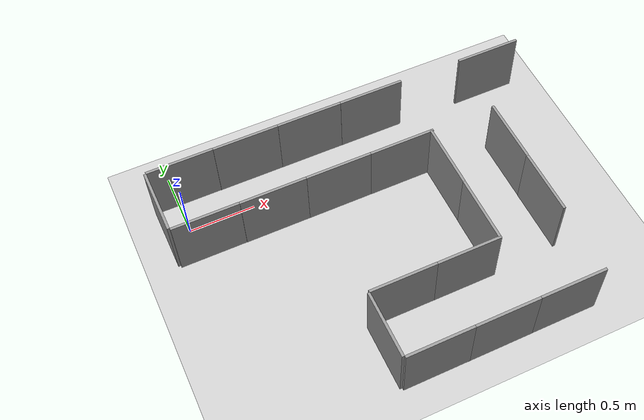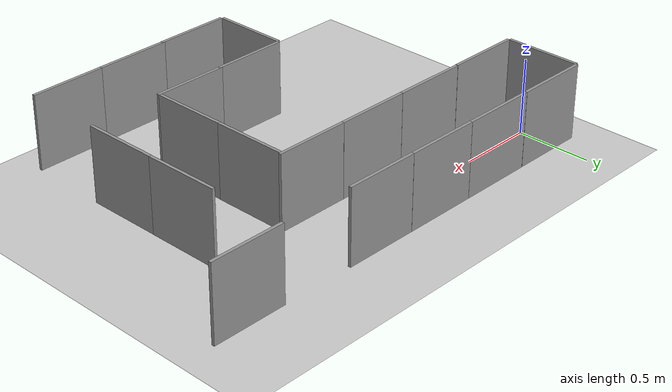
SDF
<sdf version="1.7">
 <world name="default">
  <model name="ground_plane">
   <static>1</static>
   <link name="link">
    <collision name="collision">
     <geometry><plane><normal>0 0 1</normal><size>100 100</size></plane></geometry>
     <surface><friction><ode><mu>100</mu><mu2>50</mu2></ode></friction></surface>
    </collision>
    <visual name="visual">
     <cast_shadows>0</cast_shadows>
     <geometry><plane><normal>0 0 1</normal><size>100 100</size></plane></geometry>
     <material>
      <script><uri>file://media/materials/scripts/gazebo.material</uri><name>Gazebo/Grey</name></script>
     </material>
    </visual>
   </link>
  </model>
  <model name="hsl_module_1">
   <link name="link_2_clone">
    <inertial>
     <mass>1</mass>
     <inertia><ixx>0.01</ixx><ixy>0</ixy><ixz>0</ixz><iyy>0.02</iyy><iyz>0</iyz><izz>0.01</izz></inertia>
    </inertial>
    <pose>0.088798 -0.257146 0 0 -0 0</pose>
    <visual name="visual">
     <geometry><box><size>0.5 0.02 0.5</size></box></geometry>
     <material>
      <lighting>1</lighting>
      <script><uri>file://media/materials/scripts/gazebo.material</uri><name>Gazebo/Grey</name></script>
      <shader type="pixel"><normal_map>__default__</normal_map></shader>
      <ambient>0.3 0.3 0.3 1</ambient>
      <diffuse>0.7 0.7 0.7 1</diffuse>
      <specular>0.01 0.01 0.01 1</specular>
      <emissive>0 0 0 1</emissive>
     </material>
    </visual>
    <collision name="collision">
     <geometry><box><size>0.5 0.02 0.5</size></box></geometry>
     <surface>
      <friction>
       <ode><mu>1</mu><mu2>1</mu2><fdir1>0 0 0</fdir1><slip1>0</slip1><slip2>0</slip2></ode>
       <torsional>
        <coefficient>1</coefficient>
        <patch_radius>0</patch_radius>
        <surface_radius>0</surface_radius>
        <use_patch_radius>1</use_patch_radius>
        <ode><slip>0</slip></ode>
       </torsional>
      </friction>
      <bounce><restitution_coefficient>0</restitution_coefficient><threshold>1e+06</threshold></bounce>
      <contact>
       <collide_without_contact>0</collide_without_contact>
       <collide_without_contact_bitmask>1</collide_without_contact_bitmask>
       <collide_bitmask>1</collide_bitmask>
       <ode>
        <soft_cfm>0</soft_cfm>
        <soft_erp>0.2</soft_erp>
        <kp>1e+13</kp>
        <kd>1</kd>
        <max_vel>0.01</max_vel>
        <min_depth>0</min_depth>
       </ode>
       <bullet>
        <split_impulse>1</split_impulse>
        <split_impulse_penetration_threshold>-0.01</split_impulse_penetration_threshold>
        <soft_cfm>0</soft_cfm>
        <soft_erp>0.2</soft_erp>
        <kp>1e+13</kp>
        <kd>1</kd>
       </bullet>
      </contact>
     </surface>
    </collision>
   </link>
   <link name="link_2_clone_clone">
    <inertial>
     <mass>1</mass>
     <inertia><ixx>0.01</ixx><ixy>0</ixy><ixz>0</ixz><iyy>0.02</iyy><iyz>0</iyz><izz>0.01</izz></inertia>
    </inertial>
    <pose>-0.171704 0.000465 0 0 -0 1.57697</pose>
    <visual name="visual">
     <geometry><box><size>0.5 0.02 0.5</size></box></geometry>
     <material>
      <lighting>1</lighting>
      <script><uri>file://media/materials/scripts/gazebo.material</uri><name>Gazebo/Grey</name></script>
      <shader type="pixel"><normal_map>__default__</normal_map></shader>
      <ambient>0.3 0.3 0.3 1</ambient>
      <diffuse>0.7 0.7 0.7 1</diffuse>
      <specular>0.01 0.01 0.01 1</specular>
      <emissive>0 0 0 1</emissive>
     </material>
    </visual>
    <collision name="collision">
     <geometry><box><size>0.5 0.02 0.5</size></box></geometry>
     <surface>
      <friction>
       <ode><mu>1</mu><mu2>1</mu2><fdir1>0 0 0</fdir1><slip1>0</slip1><slip2>0</slip2></ode>
       <torsional>
        <coefficient>1</coefficient>
        <patch_radius>0</patch_radius>
        <surface_radius>0</surface_radius>
        <use_patch_radius>1</use_patch_radius>
        <ode><slip>0</slip></ode>
       </torsional>
      </friction>
      <bounce><restitution_coefficient>0</restitution_coefficient><threshold>1e+06</threshold></bounce>
      <contact>
       <collide_without_contact>0</collide_without_contact>
       <collide_without_contact_bitmask>1</collide_without_contact_bitmask>
       <collide_bitmask>1</collide_bitmask>
       <ode>
        <soft_cfm>0</soft_cfm>
        <soft_erp>0.2</soft_erp>
        <kp>1e+13</kp>
        <kd>1</kd>
        <max_vel>0.01</max_vel>
        <min_depth>0</min_depth>
       </ode>
       <bullet>
        <split_impulse>1</split_impulse>
        <split_impulse_penetration_threshold>-0.01</split_impulse_penetration_threshold>
        <soft_cfm>0</soft_cfm>
        <soft_erp>0.2</soft_erp>
        <kp>1e+13</kp>
        <kd>1</kd>
       </bullet>
      </contact>
     </surface>
    </collision>
   </link>
   <link name="link_2_clone_clone_0">
    <inertial>
     <mass>1</mass>
     <inertia><ixx>0.01</ixx><ixy>0</ixy><ixz>0</ixz><iyy>0.02</iyy><iyz>0</iyz><izz>0.01</izz></inertia>
    </inertial>
    <pose>0.082906 0.256681 0 0 -0 0</pose>
    <visual name="visual">
     <geometry><box><size>0.5 0.02 0.5</size></box></geometry>
     <material>
      <lighting>1</lighting>
      <script><uri>file://media/materials/scripts/gazebo.material</uri><name>Gazebo/Grey</name></script>
      <shader type="pixel"><normal_map>__default__</normal_map></shader>
      <ambient>0.3 0.3 0.3 1</ambient>
      <diffuse>0.7 0.7 0.7 1</diffuse>
      <specular>0.01 0.01 0.01 1</specular>
      <emissive>0 0 0 1</emissive>
     </material>
    </visual>
    <collision name="collision">
     <geometry><box><size>0.5 0.02 0.5</size></box></geometry>
     <surface>
      <friction>
       <ode><mu>1</mu><mu2>1</mu2><fdir1>0 0 0</fdir1><slip1>0</slip1><slip2>0</slip2></ode>
       <torsional>
        <coefficient>1</coefficient>
        <patch_radius>0</patch_radius>
        <surface_radius>0</surface_radius>
        <use_patch_radius>1</use_patch_radius>
        <ode><slip>0</slip></ode>
       </torsional>
      </friction>
      <bounce><restitution_coefficient>0</restitution_coefficient><threshold>1e+06</threshold></bounce>
      <contact>
       <collide_without_contact>0</collide_without_contact>
       <collide_without_contact_bitmask>1</collide_without_contact_bitmask>
       <collide_bitmask>1</collide_bitmask>
       <ode>
        <soft_cfm>0</soft_cfm>
        <soft_erp>0.2</soft_erp>
        <kp>1e+13</kp>
        <kd>1</kd>
        <max_vel>0.01</max_vel>
        <min_depth>0</min_depth>
       </ode>
       <bullet>
        <split_impulse>1</split_impulse>
        <split_impulse_penetration_threshold>-0.01</split_impulse_penetration_threshold>
        <soft_cfm>0</soft_cfm>
        <soft_erp>0.2</soft_erp>
        <kp>1e+13</kp>
        <kd>1</kd>
       </bullet>
      </contact>
     </surface>
    </collision>
   </link>
   <static>0</static>
   <pose>0.002202 0.000766 0.251418 0 -0 0</pose>
  </model>
  <model name="hsl_module_2">
   <link name="link_2_clone">
    <inertial>
     <mass>1</mass>
     <inertia><ixx>0.01</ixx><ixy>0</ixy><ixz>0</ixz><iyy>0.02</iyy><iyz>0</iyz><izz>0.01</izz></inertia>
    </inertial>
    <pose>-0.318213 -0.417987 0.25 0 -0 0</pose>
    <visual name="visual">
     <geometry><box><size>0.5 0.02 0.5</size></box></geometry>
     <material>
      <lighting>1</lighting>
      <script><uri>file://media/materials/scripts/gazebo.material</uri><name>Gazebo/Grey</name></script>
      <shader type="pixel"><normal_map>__default__</normal_map></shader>
      <ambient>0.3 0.3 0.3 1</ambient>
      <diffuse>0.7 0.7 0.7 1</diffuse>
      <specular>0.01 0.01 0.01 1</specular>
      <emissive>0 0 0 1</emissive>
     </material>
    </visual>
    <collision name="collision">
     <geometry><box><size>0.5 0.02 0.5</size></box></geometry>
     <surface>
      <friction>
       <ode><mu>1</mu><mu2>1</mu2><fdir1>0 0 0</fdir1><slip1>0</slip1><slip2>0</slip2></ode>
       <torsional>
        <coefficient>1</coefficient>
        <patch_radius>0</patch_radius>
        <surface_radius>0</surface_radius>
        <use_patch_radius>1</use_patch_radius>
        <ode><slip>0</slip></ode>
       </torsional>
      </friction>
      <bounce><restitution_coefficient>0</restitution_coefficient><threshold>1e+06</threshold></bounce>
      <contact>
       <collide_without_contact>0</collide_without_contact>
       <collide_without_contact_bitmask>1</collide_without_contact_bitmask>
       <collide_bitmask>1</collide_bitmask>
       <ode>
        <soft_cfm>0</soft_cfm>
        <soft_erp>0.2</soft_erp>
        <kp>1e+13</kp>
        <kd>1</kd>
        <max_vel>0.01</max_vel>
        <min_depth>0</min_depth>
       </ode>
       <bullet>
        <split_impulse>1</split_impulse>
        <split_impulse_penetration_threshold>-0.01</split_impulse_penetration_threshold>
        <soft_cfm>0</soft_cfm>
        <soft_erp>0.2</soft_erp>
        <kp>1e+13</kp>
        <kd>1</kd>
       </bullet>
      </contact>
     </surface>
    </collision>
   </link>
   <link name="link_2_clone_clone_0">
    <inertial>
     <mass>1</mass>
     <inertia><ixx>0.01</ixx><ixy>0</ixy><ixz>0</ixz><iyy>0.02</iyy><iyz>0</iyz><izz>0.01</izz></inertia>
    </inertial>
    <pose>-0.324105 0.095839 0.25 0 -0 0</pose>
    <visual name="visual">
     <geometry><box><size>0.5 0.02 0.5</size></box></geometry>
     <material>
      <lighting>1</lighting>
      <script><uri>file://media/materials/scripts/gazebo.material</uri><name>Gazebo/Grey</name></script>
      <shader type="pixel"><normal_map>__default__</normal_map></shader>
      <ambient>0.3 0.3 0.3 1</ambient>
      <diffuse>0.7 0.7 0.7 1</diffuse>
      <specular>0.01 0.01 0.01 1</specular>
      <emissive>0 0 0 1</emissive>
     </material>
    </visual>
    <collision name="collision">
     <geometry><box><size>0.5 0.02 0.5</size></box></geometry>
     <surface>
      <friction>
       <ode><mu>1</mu><mu2>1</mu2><fdir1>0 0 0</fdir1><slip1>0</slip1><slip2>0</slip2></ode>
       <torsional>
        <coefficient>1</coefficient>
        <patch_radius>0</patch_radius>
        <surface_radius>0</surface_radius>
        <use_patch_radius>1</use_patch_radius>
        <ode><slip>0</slip></ode>
       </torsional>
      </friction>
      <bounce><restitution_coefficient>0</restitution_coefficient><threshold>1e+06</threshold></bounce>
      <contact>
       <collide_without_contact>0</collide_without_contact>
       <collide_without_contact_bitmask>1</collide_without_contact_bitmask>
       <collide_bitmask>1</collide_bitmask>
       <ode>
        <soft_cfm>0</soft_cfm>
        <soft_erp>0.2</soft_erp>
        <kp>1e+13</kp>
        <kd>1</kd>
        <max_vel>0.01</max_vel>
        <min_depth>0</min_depth>
       </ode>
       <bullet>
        <split_impulse>1</split_impulse>
        <split_impulse_penetration_threshold>-0.01</split_impulse_penetration_threshold>
        <soft_cfm>0</soft_cfm>
        <soft_erp>0.2</soft_erp>
        <kp>1e+13</kp>
        <kd>1</kd>
       </bullet>
      </contact>
     </surface>
    </collision>
   </link>
   <static>0</static>
   <pose>0.909912 0.161139 0 0 -0 0</pose>
  </model>
  <model name="hsl_module_2_clone">
   <link name="link_2_clone">
    <inertial>
     <mass>1</mass>
     <inertia><ixx>0.01</ixx><ixy>0</ixy><ixz>0</ixz><iyy>0.02</iyy><iyz>0</iyz><izz>0.01</izz></inertia>
    </inertial>
    <pose>-0.318213 -0.417987 0.25 0 -0 0</pose>
    <visual name="visual">
     <geometry><box><size>0.5 0.02 0.5</size></box></geometry>
     <material>
      <lighting>1</lighting>
      <script><uri>file://media/materials/scripts/gazebo.material</uri><name>Gazebo/Grey</name></script>
      <shader type="pixel"><normal_map>__default__</normal_map></shader>
      <ambient>0.3 0.3 0.3 1</ambient>
      <diffuse>0.7 0.7 0.7 1</diffuse>
      <specular>0.01 0.01 0.01 1</specular>
      <emissive>0 0 0 1</emissive>
     </material>
    </visual>
    <collision name="collision">
     <geometry><box><size>0.5 0.02 0.5</size></box></geometry>
     <surface>
      <friction>
       <ode><mu>1</mu><mu2>1</mu2><fdir1>0 0 0</fdir1><slip1>0</slip1><slip2>0</slip2></ode>
       <torsional>
        <coefficient>1</coefficient>
        <patch_radius>0</patch_radius>
        <surface_radius>0</surface_radius>
        <use_patch_radius>1</use_patch_radius>
        <ode><slip>0</slip></ode>
       </torsional>
      </friction>
      <bounce><restitution_coefficient>0</restitution_coefficient><threshold>1e+06</threshold></bounce>
      <contact>
       <collide_without_contact>0</collide_without_contact>
       <collide_without_contact_bitmask>1</collide_without_contact_bitmask>
       <collide_bitmask>1</collide_bitmask>
       <ode>
        <soft_cfm>0</soft_cfm>
        <soft_erp>0.2</soft_erp>
        <kp>1e+13</kp>
        <kd>1</kd>
        <max_vel>0.01</max_vel>
        <min_depth>0</min_depth>
       </ode>
       <bullet>
        <split_impulse>1</split_impulse>
        <split_impulse_penetration_threshold>-0.01</split_impulse_penetration_threshold>
        <soft_cfm>0</soft_cfm>
        <soft_erp>0.2</soft_erp>
        <kp>1e+13</kp>
        <kd>1</kd>
       </bullet>
      </contact>
     </surface>
    </collision>
   </link>
   <link name="link_2_clone_clone_0">
    <inertial>
     <mass>1</mass>
     <inertia><ixx>0.01</ixx><ixy>0</ixy><ixz>0</ixz><iyy>0.02</iyy><iyz>0</iyz><izz>0.01</izz></inertia>
    </inertial>
    <pose>-0.324105 0.095839 0.25 0 -0 0</pose>
    <visual name="visual">
     <geometry><box><size>0.5 0.02 0.5</size></box></geometry>
     <material>
      <lighting>1</lighting>
      <script><uri>file://media/materials/scripts/gazebo.material</uri><name>Gazebo/Grey</name></script>
      <shader type="pixel"><normal_map>__default__</normal_map></shader>
      <ambient>0.3 0.3 0.3 1</ambient>
      <diffuse>0.7 0.7 0.7 1</diffuse>
      <specular>0.01 0.01 0.01 1</specular>
      <emissive>0 0 0 1</emissive>
     </material>
    </visual>
    <collision name="collision">
     <geometry><box><size>0.5 0.02 0.5</size></box></geometry>
     <surface>
      <friction>
       <ode><mu>1</mu><mu2>1</mu2><fdir1>0 0 0</fdir1><slip1>0</slip1><slip2>0</slip2></ode>
       <torsional>
        <coefficient>1</coefficient>
        <patch_radius>0</patch_radius>
        <surface_radius>0</surface_radius>
        <use_patch_radius>1</use_patch_radius>
        <ode><slip>0</slip></ode>
       </torsional>
      </friction>
      <bounce><restitution_coefficient>0</restitution_coefficient><threshold>1e+06</threshold></bounce>
      <contact>
       <collide_without_contact>0</collide_without_contact>
       <collide_without_contact_bitmask>1</collide_without_contact_bitmask>
       <collide_bitmask>1</collide_bitmask>
       <ode>
        <soft_cfm>0</soft_cfm>
        <soft_erp>0.2</soft_erp>
        <kp>1e+13</kp>
        <kd>1</kd>
        <max_vel>0.01</max_vel>
        <min_depth>0</min_depth>
       </ode>
       <bullet>
        <split_impulse>1</split_impulse>
        <split_impulse_penetration_threshold>-0.01</split_impulse_penetration_threshold>
        <soft_cfm>0</soft_cfm>
        <soft_erp>0.2</soft_erp>
        <kp>1e+13</kp>
        <kd>1</kd>
       </bullet>
      </contact>
     </surface>
    </collision>
   </link>
   <static>0</static>
   <pose>1.40798 0.16075 0 0 -0 0</pose>
  </model>
  <model name="hsl_module_2_clone_clone">
   <link name="link_2_clone">
    <inertial>
     <mass>1</mass>
     <inertia><ixx>0.01</ixx><ixy>0</ixy><ixz>0</ixz><iyy>0.02</iyy><iyz>0</iyz><izz>0.01</izz></inertia>
    </inertial>
    <pose>-0.318213 -0.417987 0.25 0 -0 0</pose>
    <visual name="visual">
     <geometry><box><size>0.5 0.02 0.5</size></box></geometry>
     <material>
      <lighting>1</lighting>
      <script><uri>file://media/materials/scripts/gazebo.material</uri><name>Gazebo/Grey</name></script>
      <shader type="pixel"><normal_map>__default__</normal_map></shader>
      <ambient>0.3 0.3 0.3 1</ambient>
      <diffuse>0.7 0.7 0.7 1</diffuse>
      <specular>0.01 0.01 0.01 1</specular>
      <emissive>0 0 0 1</emissive>
     </material>
    </visual>
    <collision name="collision">
     <geometry><box><size>0.5 0.02 0.5</size></box></geometry>
     <surface>
      <friction>
       <ode><mu>1</mu><mu2>1</mu2><fdir1>0 0 0</fdir1><slip1>0</slip1><slip2>0</slip2></ode>
       <torsional>
        <coefficient>1</coefficient>
        <patch_radius>0</patch_radius>
        <surface_radius>0</surface_radius>
        <use_patch_radius>1</use_patch_radius>
        <ode><slip>0</slip></ode>
       </torsional>
      </friction>
      <bounce><restitution_coefficient>0</restitution_coefficient><threshold>1e+06</threshold></bounce>
      <contact>
       <collide_without_contact>0</collide_without_contact>
       <collide_without_contact_bitmask>1</collide_without_contact_bitmask>
       <collide_bitmask>1</collide_bitmask>
       <ode>
        <soft_cfm>0</soft_cfm>
        <soft_erp>0.2</soft_erp>
        <kp>1e+13</kp>
        <kd>1</kd>
        <max_vel>0.01</max_vel>
        <min_depth>0</min_depth>
       </ode>
       <bullet>
        <split_impulse>1</split_impulse>
        <split_impulse_penetration_threshold>-0.01</split_impulse_penetration_threshold>
        <soft_cfm>0</soft_cfm>
        <soft_erp>0.2</soft_erp>
        <kp>1e+13</kp>
        <kd>1</kd>
       </bullet>
      </contact>
     </surface>
    </collision>
   </link>
   <link name="link_2_clone_clone_0">
    <inertial>
     <mass>1</mass>
     <inertia><ixx>0.01</ixx><ixy>0</ixy><ixz>0</ixz><iyy>0.02</iyy><iyz>0</iyz><izz>0.01</izz></inertia>
    </inertial>
    <pose>-0.324105 0.095839 0.25 0 -0 0</pose>
    <visual name="visual">
     <geometry><box><size>0.5 0.02 0.5</size></box></geometry>
     <material>
      <lighting>1</lighting>
      <script><uri>file://media/materials/scripts/gazebo.material</uri><name>Gazebo/Grey</name></script>
      <shader type="pixel"><normal_map>__default__</normal_map></shader>
      <ambient>0.3 0.3 0.3 1</ambient>
      <diffuse>0.7 0.7 0.7 1</diffuse>
      <specular>0.01 0.01 0.01 1</specular>
      <emissive>0 0 0 1</emissive>
     </material>
    </visual>
    <collision name="collision">
     <geometry><box><size>0.5 0.02 0.5</size></box></geometry>
     <surface>
      <friction>
       <ode><mu>1</mu><mu2>1</mu2><fdir1>0 0 0</fdir1><slip1>0</slip1><slip2>0</slip2></ode>
       <torsional>
        <coefficient>1</coefficient>
        <patch_radius>0</patch_radius>
        <surface_radius>0</surface_radius>
        <use_patch_radius>1</use_patch_radius>
        <ode><slip>0</slip></ode>
       </torsional>
      </friction>
      <bounce><restitution_coefficient>0</restitution_coefficient><threshold>1e+06</threshold></bounce>
      <contact>
       <collide_without_contact>0</collide_without_contact>
       <collide_without_contact_bitmask>1</collide_without_contact_bitmask>
       <collide_bitmask>1</collide_bitmask>
       <ode>
        <soft_cfm>0</soft_cfm>
        <soft_erp>0.2</soft_erp>
        <kp>1e+13</kp>
        <kd>1</kd>
        <max_vel>0.01</max_vel>
        <min_depth>0</min_depth>
       </ode>
       <bullet>
        <split_impulse>1</split_impulse>
        <split_impulse_penetration_threshold>-0.01</split_impulse_penetration_threshold>
        <soft_cfm>0</soft_cfm>
        <soft_erp>0.2</soft_erp>
        <kp>1e+13</kp>
        <kd>1</kd>
       </bullet>
      </contact>
     </surface>
    </collision>
   </link>
   <static>0</static>
   <pose>1.9059 0.160163 0 0 -0 0</pose>
  </model>
  <model name="hsl_module_2_0">
   <link name="link_2_clone">
    <inertial>
     <mass>1</mass>
     <inertia><ixx>0.01</ixx><ixy>0</ixy><ixz>0</ixz><iyy>0.02</iyy><iyz>0</iyz><izz>0.01</izz></inertia>
    </inertial>
    <pose>-0.318213 -0.417987 0.25 0 -0 0</pose>
    <visual name="visual">
     <geometry><box><size>0.5 0.02 0.5</size></box></geometry>
     <material>
      <lighting>1</lighting>
      <script><uri>file://media/materials/scripts/gazebo.material</uri><name>Gazebo/Grey</name></script>
      <shader type="pixel"><normal_map>__default__</normal_map></shader>
      <ambient>0.3 0.3 0.3 1</ambient>
      <diffuse>0.7 0.7 0.7 1</diffuse>
      <specular>0.01 0.01 0.01 1</specular>
      <emissive>0 0 0 1</emissive>
     </material>
    </visual>
    <collision name="collision">
     <geometry><box><size>0.5 0.02 0.5</size></box></geometry>
     <surface>
      <friction>
       <ode><mu>1</mu><mu2>1</mu2><fdir1>0 0 0</fdir1><slip1>0</slip1><slip2>0</slip2></ode>
       <torsional>
        <coefficient>1</coefficient>
        <patch_radius>0</patch_radius>
        <surface_radius>0</surface_radius>
        <use_patch_radius>1</use_patch_radius>
        <ode><slip>0</slip></ode>
       </torsional>
      </friction>
      <bounce><restitution_coefficient>0</restitution_coefficient><threshold>1e+06</threshold></bounce>
      <contact>
       <collide_without_contact>0</collide_without_contact>
       <collide_without_contact_bitmask>1</collide_without_contact_bitmask>
       <collide_bitmask>1</collide_bitmask>
       <ode>
        <soft_cfm>0</soft_cfm>
        <soft_erp>0.2</soft_erp>
        <kp>1e+13</kp>
        <kd>1</kd>
        <max_vel>0.01</max_vel>
        <min_depth>0</min_depth>
       </ode>
       <bullet>
        <split_impulse>1</split_impulse>
        <split_impulse_penetration_threshold>-0.01</split_impulse_penetration_threshold>
        <soft_cfm>0</soft_cfm>
        <soft_erp>0.2</soft_erp>
        <kp>1e+13</kp>
        <kd>1</kd>
       </bullet>
      </contact>
     </surface>
    </collision>
   </link>
   <link name="link_2_clone_clone_0">
    <inertial>
     <mass>1</mass>
     <inertia><ixx>0.01</ixx><ixy>0</ixy><ixz>0</ixz><iyy>0.02</iyy><iyz>0</iyz><izz>0.01</izz></inertia>
    </inertial>
    <pose>-0.324105 0.095839 0.25 0 -0 0</pose>
    <visual name="visual">
     <geometry><box><size>0.5 0.02 0.5</size></box></geometry>
     <material>
      <lighting>1</lighting>
      <script><uri>file://media/materials/scripts/gazebo.material</uri><name>Gazebo/Grey</name></script>
      <shader type="pixel"><normal_map>__default__</normal_map></shader>
      <ambient>0.3 0.3 0.3 1</ambient>
      <diffuse>0.7 0.7 0.7 1</diffuse>
      <specular>0.01 0.01 0.01 1</specular>
      <emissive>0 0 0 1</emissive>
     </material>
    </visual>
    <collision name="collision">
     <geometry><box><size>0.5 0.02 0.5</size></box></geometry>
     <surface>
      <friction>
       <ode><mu>1</mu><mu2>1</mu2><fdir1>0 0 0</fdir1><slip1>0</slip1><slip2>0</slip2></ode>
       <torsional>
        <coefficient>1</coefficient>
        <patch_radius>0</patch_radius>
        <surface_radius>0</surface_radius>
        <use_patch_radius>1</use_patch_radius>
        <ode><slip>0</slip></ode>
       </torsional>
      </friction>
      <bounce><restitution_coefficient>0</restitution_coefficient><threshold>1e+06</threshold></bounce>
      <contact>
       <collide_without_contact>0</collide_without_contact>
       <collide_without_contact_bitmask>1</collide_without_contact_bitmask>
       <collide_bitmask>1</collide_bitmask>
       <ode>
        <soft_cfm>0</soft_cfm>
        <soft_erp>0.2</soft_erp>
        <kp>1e+13</kp>
        <kd>1</kd>
        <max_vel>0.01</max_vel>
        <min_depth>0</min_depth>
       </ode>
       <bullet>
        <split_impulse>1</split_impulse>
        <split_impulse_penetration_threshold>-0.01</split_impulse_penetration_threshold>
        <soft_cfm>0</soft_cfm>
        <soft_erp>0.2</soft_erp>
        <kp>1e+13</kp>
        <kd>1</kd>
       </bullet>
      </contact>
     </surface>
    </collision>
   </link>
   <static>0</static>
   <pose>2.24183 -0.822097 0 0 0 -1.56536</pose>
  </model>
  <model name="hsl_module_2_0_clone">
   <link name="link_2_clone">
    <inertial>
     <mass>1</mass>
     <inertia><ixx>0.01</ixx><ixy>0</ixy><ixz>0</ixz><iyy>0.02</iyy><iyz>0</iyz><izz>0.01</izz></inertia>
    </inertial>
    <pose>-0.318213 -0.417987 0.25 0 -0 0</pose>
    <visual name="visual">
     <geometry><box><size>0.5 0.02 0.5</size></box></geometry>
     <material>
      <lighting>1</lighting>
      <script><uri>file://media/materials/scripts/gazebo.material</uri><name>Gazebo/Grey</name></script>
      <shader type="pixel"><normal_map>__default__</normal_map></shader>
      <ambient>0.3 0.3 0.3 1</ambient>
      <diffuse>0.7 0.7 0.7 1</diffuse>
      <specular>0.01 0.01 0.01 1</specular>
      <emissive>0 0 0 1</emissive>
     </material>
    </visual>
    <collision name="collision">
     <geometry><box><size>0.5 0.02 0.5</size></box></geometry>
     <surface>
      <friction>
       <ode><mu>1</mu><mu2>1</mu2><fdir1>0 0 0</fdir1><slip1>0</slip1><slip2>0</slip2></ode>
       <torsional>
        <coefficient>1</coefficient>
        <patch_radius>0</patch_radius>
        <surface_radius>0</surface_radius>
        <use_patch_radius>1</use_patch_radius>
        <ode><slip>0</slip></ode>
       </torsional>
      </friction>
      <bounce><restitution_coefficient>0</restitution_coefficient><threshold>1e+06</threshold></bounce>
      <contact>
       <collide_without_contact>0</collide_without_contact>
       <collide_without_contact_bitmask>1</collide_without_contact_bitmask>
       <collide_bitmask>1</collide_bitmask>
       <ode>
        <soft_cfm>0</soft_cfm>
        <soft_erp>0.2</soft_erp>
        <kp>1e+13</kp>
        <kd>1</kd>
        <max_vel>0.01</max_vel>
        <min_depth>0</min_depth>
       </ode>
       <bullet>
        <split_impulse>1</split_impulse>
        <split_impulse_penetration_threshold>-0.01</split_impulse_penetration_threshold>
        <soft_cfm>0</soft_cfm>
        <soft_erp>0.2</soft_erp>
        <kp>1e+13</kp>
        <kd>1</kd>
       </bullet>
      </contact>
     </surface>
    </collision>
   </link>
   <link name="link_2_clone_clone_0">
    <inertial>
     <mass>1</mass>
     <inertia><ixx>0.01</ixx><ixy>0</ixy><ixz>0</ixz><iyy>0.02</iyy><iyz>0</iyz><izz>0.01</izz></inertia>
    </inertial>
    <pose>-0.324105 0.095839 0.25 0 -0 0</pose>
    <visual name="visual">
     <geometry><box><size>0.5 0.02 0.5</size></box></geometry>
     <material>
      <lighting>1</lighting>
      <script><uri>file://media/materials/scripts/gazebo.material</uri><name>Gazebo/Grey</name></script>
      <shader type="pixel"><normal_map>__default__</normal_map></shader>
      <ambient>0.3 0.3 0.3 1</ambient>
      <diffuse>0.7 0.7 0.7 1</diffuse>
      <specular>0.01 0.01 0.01 1</specular>
      <emissive>0 0 0 1</emissive>
     </material>
    </visual>
    <collision name="collision">
     <geometry><box><size>0.5 0.02 0.5</size></box></geometry>
     <surface>
      <friction>
       <ode><mu>1</mu><mu2>1</mu2><fdir1>0 0 0</fdir1><slip1>0</slip1><slip2>0</slip2></ode>
       <torsional>
        <coefficient>1</coefficient>
        <patch_radius>0</patch_radius>
        <surface_radius>0</surface_radius>
        <use_patch_radius>1</use_patch_radius>
        <ode><slip>0</slip></ode>
       </torsional>
      </friction>
      <bounce><restitution_coefficient>0</restitution_coefficient><threshold>1e+06</threshold></bounce>
      <contact>
       <collide_without_contact>0</collide_without_contact>
       <collide_without_contact_bitmask>1</collide_without_contact_bitmask>
       <collide_bitmask>1</collide_bitmask>
       <ode>
        <soft_cfm>0</soft_cfm>
        <soft_erp>0.2</soft_erp>
        <kp>1e+13</kp>
        <kd>1</kd>
        <max_vel>0.01</max_vel>
        <min_depth>0</min_depth>
       </ode>
       <bullet>
        <split_impulse>1</split_impulse>
        <split_impulse_penetration_threshold>-0.01</split_impulse_penetration_threshold>
        <soft_cfm>0</soft_cfm>
        <soft_erp>0.2</soft_erp>
        <kp>1e+13</kp>
        <kd>1</kd>
       </bullet>
      </contact>
     </surface>
    </collision>
   </link>
   <static>0</static>
   <pose>2.24354 -1.31921 0 0 0 -1.56536</pose>
  </model>
  <model name="hsl_module_2_clone_clone_clone">
   <link name="link_2_clone">
    <inertial>
     <mass>1</mass>
     <inertia><ixx>0.01</ixx><ixy>0</ixy><ixz>0</ixz><iyy>0.02</iyy><iyz>0</iyz><izz>0.01</izz></inertia>
    </inertial>
    <pose>-0.318213 -0.417987 0.25 0 -0 0</pose>
    <visual name="visual">
     <geometry><box><size>0.5 0.02 0.5</size></box></geometry>
     <material>
      <lighting>1</lighting>
      <script><uri>file://media/materials/scripts/gazebo.material</uri><name>Gazebo/Grey</name></script>
      <shader type="pixel"><normal_map>__default__</normal_map></shader>
      <ambient>0.3 0.3 0.3 1</ambient>
      <diffuse>0.7 0.7 0.7 1</diffuse>
      <specular>0.01 0.01 0.01 1</specular>
      <emissive>0 0 0 1</emissive>
     </material>
    </visual>
    <collision name="collision">
     <geometry><box><size>0.5 0.02 0.5</size></box></geometry>
     <surface>
      <friction>
       <ode><mu>1</mu><mu2>1</mu2><fdir1>0 0 0</fdir1><slip1>0</slip1><slip2>0</slip2></ode>
       <torsional>
        <coefficient>1</coefficient>
        <patch_radius>0</patch_radius>
        <surface_radius>0</surface_radius>
        <use_patch_radius>1</use_patch_radius>
        <ode><slip>0</slip></ode>
       </torsional>
      </friction>
      <bounce><restitution_coefficient>0</restitution_coefficient><threshold>1e+06</threshold></bounce>
      <contact>
       <collide_without_contact>0</collide_without_contact>
       <collide_without_contact_bitmask>1</collide_without_contact_bitmask>
       <collide_bitmask>1</collide_bitmask>
       <ode>
        <soft_cfm>0</soft_cfm>
        <soft_erp>0.2</soft_erp>
        <kp>1e+13</kp>
        <kd>1</kd>
        <max_vel>0.01</max_vel>
        <min_depth>0</min_depth>
       </ode>
       <bullet>
        <split_impulse>1</split_impulse>
        <split_impulse_penetration_threshold>-0.01</split_impulse_penetration_threshold>
        <soft_cfm>0</soft_cfm>
        <soft_erp>0.2</soft_erp>
        <kp>1e+13</kp>
        <kd>1</kd>
       </bullet>
      </contact>
     </surface>
    </collision>
   </link>
   <link name="link_2_clone_clone_0">
    <inertial>
     <mass>1</mass>
     <inertia><ixx>0.01</ixx><ixy>0</ixy><ixz>0</ixz><iyy>0.02</iyy><iyz>0</iyz><izz>0.01</izz></inertia>
    </inertial>
    <pose>-0.324105 0.095839 0.25 0 -0 0</pose>
    <visual name="visual">
     <geometry><box><size>0.5 0.02 0.5</size></box></geometry>
     <material>
      <lighting>1</lighting>
      <script><uri>file://media/materials/scripts/gazebo.material</uri><name>Gazebo/Grey</name></script>
      <shader type="pixel"><normal_map>__default__</normal_map></shader>
      <ambient>0.3 0.3 0.3 1</ambient>
      <diffuse>0.7 0.7 0.7 1</diffuse>
      <specular>0.01 0.01 0.01 1</specular>
      <emissive>0 0 0 1</emissive>
     </material>
    </visual>
    <collision name="collision">
     <geometry><box><size>0.5 0.02 0.5</size></box></geometry>
     <surface>
      <friction>
       <ode><mu>1</mu><mu2>1</mu2><fdir1>0 0 0</fdir1><slip1>0</slip1><slip2>0</slip2></ode>
       <torsional>
        <coefficient>1</coefficient>
        <patch_radius>0</patch_radius>
        <surface_radius>0</surface_radius>
        <use_patch_radius>1</use_patch_radius>
        <ode><slip>0</slip></ode>
       </torsional>
      </friction>
      <bounce><restitution_coefficient>0</restitution_coefficient><threshold>1e+06</threshold></bounce>
      <contact>
       <collide_without_contact>0</collide_without_contact>
       <collide_without_contact_bitmask>1</collide_without_contact_bitmask>
       <collide_bitmask>1</collide_bitmask>
       <ode>
        <soft_cfm>0</soft_cfm>
        <soft_erp>0.2</soft_erp>
        <kp>1e+13</kp>
        <kd>1</kd>
        <max_vel>0.01</max_vel>
        <min_depth>0</min_depth>
       </ode>
       <bullet>
        <split_impulse>1</split_impulse>
        <split_impulse_penetration_threshold>-0.01</split_impulse_penetration_threshold>
        <soft_cfm>0</soft_cfm>
        <soft_erp>0.2</soft_erp>
        <kp>1e+13</kp>
        <kd>1</kd>
       </bullet>
      </contact>
     </surface>
    </collision>
   </link>
   <static>0</static>
   <pose>1.90903 -1.35537 0 0 -0 0</pose>
  </model>
  <model name="hsl_module_5">
   <link name="link_2_clone_clone">
    <inertial>
     <mass>1</mass>
     <inertia><ixx>0.01</ixx><ixy>0</ixy><ixz>0</ixz><iyy>0.02</iyy><iyz>0</iyz><izz>0.01</izz></inertia>
    </inertial>
    <pose>-0.444864 -0.291837 0.25 0 -0 1.57298</pose>
    <visual name="visual">
     <geometry><box><size>0.5 0.02 0.5</size></box></geometry>
     <material>
      <lighting>1</lighting>
      <script><uri>file://media/materials/scripts/gazebo.material</uri><name>Gazebo/Grey</name></script>
      <shader type="pixel"><normal_map>__default__</normal_map></shader>
      <ambient>0.3 0.3 0.3 1</ambient>
      <diffuse>0.7 0.7 0.7 1</diffuse>
      <specular>0.01 0.01 0.01 1</specular>
      <emissive>0 0 0 1</emissive>
     </material>
    </visual>
    <collision name="collision">
     <geometry><box><size>0.5 0.02 0.5</size></box></geometry>
     <surface>
      <friction>
       <ode><mu>1</mu><mu2>1</mu2><fdir1>0 0 0</fdir1><slip1>0</slip1><slip2>0</slip2></ode>
       <torsional>
        <coefficient>1</coefficient>
        <patch_radius>0</patch_radius>
        <surface_radius>0</surface_radius>
        <use_patch_radius>1</use_patch_radius>
        <ode><slip>0</slip></ode>
       </torsional>
      </friction>
      <bounce><restitution_coefficient>0</restitution_coefficient><threshold>1e+06</threshold></bounce>
      <contact>
       <collide_without_contact>0</collide_without_contact>
       <collide_without_contact_bitmask>1</collide_without_contact_bitmask>
       <collide_bitmask>1</collide_bitmask>
       <ode>
        <soft_cfm>0</soft_cfm>
        <soft_erp>0.2</soft_erp>
        <kp>1e+13</kp>
        <kd>1</kd>
        <max_vel>0.01</max_vel>
        <min_depth>0</min_depth>
       </ode>
       <bullet>
        <split_impulse>1</split_impulse>
        <split_impulse_penetration_threshold>-0.01</split_impulse_penetration_threshold>
        <soft_cfm>0</soft_cfm>
        <soft_erp>0.2</soft_erp>
        <kp>1e+13</kp>
        <kd>1</kd>
       </bullet>
      </contact>
     </surface>
    </collision>
   </link>
   <static>0</static>
   <pose>1.79883 -1.32734 0 0 -0 1.56876</pose>
  </model>
  <model name="hsl_module_1_clone">
   <link name="link_2_clone">
    <inertial>
     <mass>1</mass>
     <inertia><ixx>0.01</ixx><ixy>0</ixy><ixz>0</ixz><iyy>0.02</iyy><iyz>0</iyz><izz>0.01</izz></inertia>
    </inertial>
    <pose>0.088798 -0.257146 0 0 -0 0</pose>
    <visual name="visual">
     <geometry><box><size>0.5 0.02 0.5</size></box></geometry>
     <material>
      <lighting>1</lighting>
      <script><uri>file://media/materials/scripts/gazebo.material</uri><name>Gazebo/Grey</name></script>
      <shader type="pixel"><normal_map>__default__</normal_map></shader>
      <ambient>0.3 0.3 0.3 1</ambient>
      <diffuse>0.7 0.7 0.7 1</diffuse>
      <specular>0.01 0.01 0.01 1</specular>
      <emissive>0 0 0 1</emissive>
     </material>
    </visual>
    <collision name="collision">
     <geometry><box><size>0.5 0.02 0.5</size></box></geometry>
     <surface>
      <friction>
       <ode><mu>1</mu><mu2>1</mu2><fdir1>0 0 0</fdir1><slip1>0</slip1><slip2>0</slip2></ode>
       <torsional>
        <coefficient>1</coefficient>
        <patch_radius>0</patch_radius>
        <surface_radius>0</surface_radius>
        <use_patch_radius>1</use_patch_radius>
        <ode><slip>0</slip></ode>
       </torsional>
      </friction>
      <bounce><restitution_coefficient>0</restitution_coefficient><threshold>1e+06</threshold></bounce>
      <contact>
       <collide_without_contact>0</collide_without_contact>
       <collide_without_contact_bitmask>1</collide_without_contact_bitmask>
       <collide_bitmask>1</collide_bitmask>
       <ode>
        <soft_cfm>0</soft_cfm>
        <soft_erp>0.2</soft_erp>
        <kp>1e+13</kp>
        <kd>1</kd>
        <max_vel>0.01</max_vel>
        <min_depth>0</min_depth>
       </ode>
       <bullet>
        <split_impulse>1</split_impulse>
        <split_impulse_penetration_threshold>-0.01</split_impulse_penetration_threshold>
        <soft_cfm>0</soft_cfm>
        <soft_erp>0.2</soft_erp>
        <kp>1e+13</kp>
        <kd>1</kd>
       </bullet>
      </contact>
     </surface>
    </collision>
   </link>
   <link name="link_2_clone_clone">
    <inertial>
     <mass>1</mass>
     <inertia><ixx>0.01</ixx><ixy>0</ixy><ixz>0</ixz><iyy>0.02</iyy><iyz>0</iyz><izz>0.01</izz></inertia>
    </inertial>
    <pose>-0.171704 0.000465 0 0 -0 1.57697</pose>
    <visual name="visual">
     <geometry><box><size>0.5 0.02 0.5</size></box></geometry>
     <material>
      <lighting>1</lighting>
      <script><uri>file://media/materials/scripts/gazebo.material</uri><name>Gazebo/Grey</name></script>
      <shader type="pixel"><normal_map>__default__</normal_map></shader>
      <ambient>0.3 0.3 0.3 1</ambient>
      <diffuse>0.7 0.7 0.7 1</diffuse>
      <specular>0.01 0.01 0.01 1</specular>
      <emissive>0 0 0 1</emissive>
     </material>
    </visual>
    <collision name="collision">
     <geometry><box><size>0.5 0.02 0.5</size></box></geometry>
     <surface>
      <friction>
       <ode><mu>1</mu><mu2>1</mu2><fdir1>0 0 0</fdir1><slip1>0</slip1><slip2>0</slip2></ode>
       <torsional>
        <coefficient>1</coefficient>
        <patch_radius>0</patch_radius>
        <surface_radius>0</surface_radius>
        <use_patch_radius>1</use_patch_radius>
        <ode><slip>0</slip></ode>
       </torsional>
      </friction>
      <bounce><restitution_coefficient>0</restitution_coefficient><threshold>1e+06</threshold></bounce>
      <contact>
       <collide_without_contact>0</collide_without_contact>
       <collide_without_contact_bitmask>1</collide_without_contact_bitmask>
       <collide_bitmask>1</collide_bitmask>
       <ode>
        <soft_cfm>0</soft_cfm>
        <soft_erp>0.2</soft_erp>
        <kp>1e+13</kp>
        <kd>1</kd>
        <max_vel>0.01</max_vel>
        <min_depth>0</min_depth>
       </ode>
       <bullet>
        <split_impulse>1</split_impulse>
        <split_impulse_penetration_threshold>-0.01</split_impulse_penetration_threshold>
        <soft_cfm>0</soft_cfm>
        <soft_erp>0.2</soft_erp>
        <kp>1e+13</kp>
        <kd>1</kd>
       </bullet>
      </contact>
     </surface>
    </collision>
   </link>
   <link name="link_2_clone_clone_0">
    <inertial>
     <mass>1</mass>
     <inertia><ixx>0.01</ixx><ixy>0</ixy><ixz>0</ixz><iyy>0.02</iyy><iyz>0</iyz><izz>0.01</izz></inertia>
    </inertial>
    <pose>0.082906 0.256681 0 0 -0 0</pose>
    <visual name="visual">
     <geometry><box><size>0.5 0.02 0.5</size></box></geometry>
     <material>
      <lighting>1</lighting>
      <script><uri>file://media/materials/scripts/gazebo.material</uri><name>Gazebo/Grey</name></script>
      <shader type="pixel"><normal_map>__default__</normal_map></shader>
      <ambient>0.3 0.3 0.3 1</ambient>
      <diffuse>0.7 0.7 0.7 1</diffuse>
      <specular>0.01 0.01 0.01 1</specular>
      <emissive>0 0 0 1</emissive>
     </material>
    </visual>
    <collision name="collision">
     <geometry><box><size>0.5 0.02 0.5</size></box></geometry>
     <surface>
      <friction>
       <ode><mu>1</mu><mu2>1</mu2><fdir1>0 0 0</fdir1><slip1>0</slip1><slip2>0</slip2></ode>
       <torsional>
        <coefficient>1</coefficient>
        <patch_radius>0</patch_radius>
        <surface_radius>0</surface_radius>
        <use_patch_radius>1</use_patch_radius>
        <ode><slip>0</slip></ode>
       </torsional>
      </friction>
      <bounce><restitution_coefficient>0</restitution_coefficient><threshold>1e+06</threshold></bounce>
      <contact>
       <collide_without_contact>0</collide_without_contact>
       <collide_without_contact_bitmask>1</collide_without_contact_bitmask>
       <collide_bitmask>1</collide_bitmask>
       <ode>
        <soft_cfm>0</soft_cfm>
        <soft_erp>0.2</soft_erp>
        <kp>1e+13</kp>
        <kd>1</kd>
        <max_vel>0.01</max_vel>
        <min_depth>0</min_depth>
       </ode>
       <bullet>
        <split_impulse>1</split_impulse>
        <split_impulse_penetration_threshold>-0.01</split_impulse_penetration_threshold>
        <soft_cfm>0</soft_cfm>
        <soft_erp>0.2</soft_erp>
        <kp>1e+13</kp>
        <kd>1</kd>
       </bullet>
      </contact>
     </surface>
    </collision>
   </link>
   <static>0</static>
   <pose>1.01829 -1.51628 0.251418 0 -0 0</pose>
  </model>
  <model name="hsl_module_5_clone">
   <link name="link_2_clone_clone">
    <inertial>
     <mass>1</mass>
     <inertia><ixx>0.01</ixx><ixy>0</ixy><ixz>0</ixz><iyy>0.02</iyy><iyz>0</iyz><izz>0.01</izz></inertia>
    </inertial>
    <pose>-0.444864 -0.291837 0.25 0 -0 1.57298</pose>
    <visual name="visual">
     <geometry><box><size>0.5 0.02 0.5</size></box></geometry>
     <material>
      <lighting>1</lighting>
      <script><uri>file://media/materials/scripts/gazebo.material</uri><name>Gazebo/Grey</name></script>
      <shader type="pixel"><normal_map>__default__</normal_map></shader>
      <ambient>0.3 0.3 0.3 1</ambient>
      <diffuse>0.7 0.7 0.7 1</diffuse>
      <specular>0.01 0.01 0.01 1</specular>
      <emissive>0 0 0 1</emissive>
     </material>
    </visual>
    <collision name="collision">
     <geometry><box><size>0.5 0.02 0.5</size></box></geometry>
     <surface>
      <friction>
       <ode><mu>1</mu><mu2>1</mu2><fdir1>0 0 0</fdir1><slip1>0</slip1><slip2>0</slip2></ode>
       <torsional>
        <coefficient>1</coefficient>
        <patch_radius>0</patch_radius>
        <surface_radius>0</surface_radius>
        <use_patch_radius>1</use_patch_radius>
        <ode><slip>0</slip></ode>
       </torsional>
      </friction>
      <bounce><restitution_coefficient>0</restitution_coefficient><threshold>1e+06</threshold></bounce>
      <contact>
       <collide_without_contact>0</collide_without_contact>
       <collide_without_contact_bitmask>1</collide_without_contact_bitmask>
       <collide_bitmask>1</collide_bitmask>
       <ode>
        <soft_cfm>0</soft_cfm>
        <soft_erp>0.2</soft_erp>
        <kp>1e+13</kp>
        <kd>1</kd>
        <max_vel>0.01</max_vel>
        <min_depth>0</min_depth>
       </ode>
       <bullet>
        <split_impulse>1</split_impulse>
        <split_impulse_penetration_threshold>-0.01</split_impulse_penetration_threshold>
        <soft_cfm>0</soft_cfm>
        <soft_erp>0.2</soft_erp>
        <kp>1e+13</kp>
        <kd>1</kd>
       </bullet>
      </contact>
     </surface>
    </collision>
   </link>
   <static>0</static>
   <pose>2.27741 0.694449 0 0 -0 1.56876</pose>
  </model>
 </world>
</sdf>
